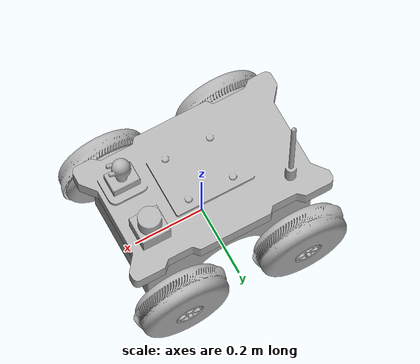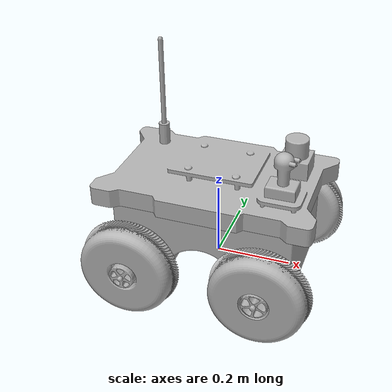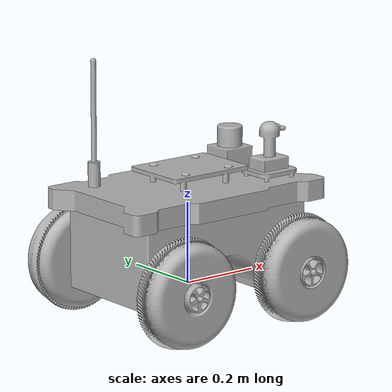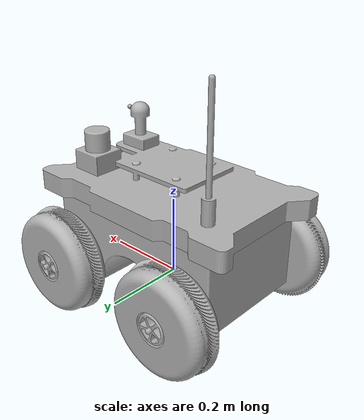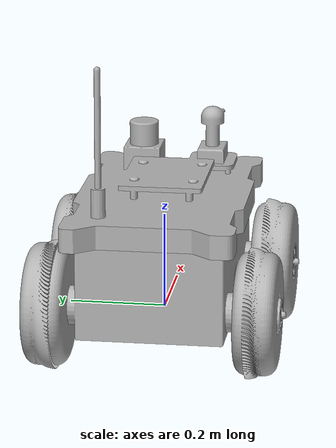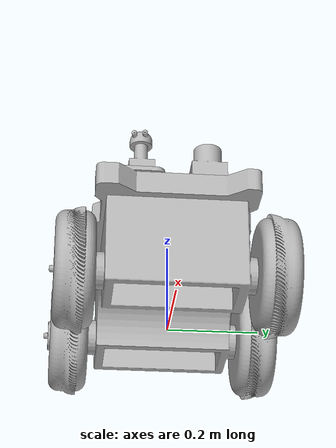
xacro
<?xml version="1.0" ?>
<robot name="Autonomous" xmlns:xacro="http://www.ros.org/wiki/xacro">

<xacro:include filename="$(find Autonomous_description)/urdf/materials.xacro" />
<xacro:include filename="$(find Autonomous_description)/urdf/Autonomous.trans" />
<xacro:include filename="$(find Autonomous_description)/urdf/Autonomous.gazebo" />
<link name="base_link">
<link name="base_footprint" />

<joint name="base_footprint_joint" type="fixed">
  <parent link="base_footprint" />
  <child link="base_link" />
</joint>
  <inertial>
    <origin rpy="0 0 0" xyz="0.00045547425860864745 0.00013334157263914496 0.12256683574833657"/>
    <mass value="161.811167542829"/>
    <inertia ixx="2.199011" ixy="-0.013482" ixz="0.005606" iyy="3.826048" iyz="-0.00094" izz="5.183959"/>
  </inertial>
  <visual>
    <origin rpy="0 0 0" xyz="0 0 0"/>
    <geometry>
      <mesh filename="package://Autonomous_description/meshes/base_link.stl" scale="0.001 0.001 0.001"/>
    </geometry>
    <material name="silver"/>
  </visual>
  <collision>
    <origin rpy="0 0 0" xyz="0 0 0"/>
    <geometry>
      <mesh filename="package://Autonomous_description/meshes/base_link.stl" scale="0.001 0.001 0.001"/>
    </geometry>
  </collision>
</link>

<link name="head_plate_1">
  <inertial>
    <origin rpy="0 0 0" xyz="0.0008857179936177908 -0.00020093464683702602 0.028916723028354296"/>
    <mass value="76.46434417799571"/>
    <inertia ixx="0.79036" ixy="0.025407" ixz="0.006932" iyy="1.841929" iyz="-0.004605" izz="2.551353"/>
  </inertial>
  <visual>
    <origin rpy="0 0 0" xyz="0.002 0.0 -0.2"/>
    <geometry>
      <mesh filename="package://Autonomous_description/meshes/head_plate_1.stl" scale="0.001 0.001 0.001"/>
    </geometry>
    <material name="silver"/>
  </visual>
  <collision>
    <origin rpy="0 0 0" xyz="0.002 0.0 -0.2"/>
    <geometry>
      <mesh filename="package://Autonomous_description/meshes/head_plate_1.stl" scale="0.001 0.001 0.001"/>
    </geometry>
  </collision>
</link>

<link name="leftwheel1_1">
  <inertial>
    <origin rpy="0 0 0" xyz="-8.462941458731166e-11 0.017600805928090324 -3.566898929691087e-07"/>
    <mass value="28.50616227536455"/>
    <inertia ixx="0.136487" ixy="-0.0" ixz="0.0" iyy="0.241289" iyz="-0.0" izz="0.136487"/>
  </inertial>
  <visual>
    <origin rpy="0 0 0" xyz="0.175 0.2315 -0.051428"/>
    <geometry>
      <mesh filename="package://Autonomous_description/meshes/leftwheel1_1.stl" scale="0.001 0.001 0.001"/>
    </geometry>
    <material name="silver"/>
  </visual>
  <collision>
    <origin rpy="0 0 0" xyz="0.175 0.2315 -0.051428"/>
    <geometry>
      <mesh filename="package://Autonomous_description/meshes/leftwheel1_1.stl" scale="0.001 0.001 0.001"/>
    </geometry>
  </collision>
</link>

<link name="leftwheel2_1">
  <inertial>
    <origin rpy="0 0 0" xyz="3.7442909883722564e-11 0.017667816011131182 -3.560382714137833e-07"/>
    <mass value="28.69673795938468"/>
    <inertia ixx="0.138023" ixy="0.0" ixz="-0.0" iyy="0.244287" iyz="0.0" izz="0.138023"/>
  </inertial>
  <visual>
    <origin rpy="0 0 0" xyz="-0.175 0.2315 -0.051428"/>
    <geometry>
      <mesh filename="package://Autonomous_description/meshes/leftwheel2_1.stl" scale="0.001 0.001 0.001"/>
    </geometry>
    <material name="silver"/>
  </visual>
  <collision>
    <origin rpy="0 0 0" xyz="-0.175 0.2315 -0.051428"/>
    <geometry>
      <mesh filename="package://Autonomous_description/meshes/leftwheel2_1.stl" scale="0.001 0.001 0.001"/>
    </geometry>
  </collision>
</link>

<link name="rightwheel1_1">
  <inertial>
    <origin rpy="0 0 0" xyz="1.7761209170075176e-11 -0.01769598448241705 5.0064323180165626e-08"/>
    <mass value="28.706203799863335"/>
    <inertia ixx="0.138087" ixy="0.0" ixz="-0.0" iyy="0.244397" iyz="0.0" izz="0.138087"/>
  </inertial>
  <visual>
    <origin rpy="0 0 0" xyz="0.175 -0.2315 -0.053213"/>
    <geometry>
      <mesh filename="package://Autonomous_description/meshes/rightwheel1_1.stl" scale="0.001 0.001 0.001"/>
    </geometry>
    <material name="silver"/>
  </visual>
  <collision>
    <origin rpy="0 0 0" xyz="0.175 -0.2315 -0.053213"/>
    <geometry>
      <mesh filename="package://Autonomous_description/meshes/rightwheel1_1.stl" scale="0.001 0.001 0.001"/>
    </geometry>
  </collision>
</link>

<link name="rightwheel2_1">
  <inertial>
    <origin rpy="0 0 0" xyz="-4.964404998197836e-10 -0.017657317794122274 5.293726080407568e-08"/>
    <mass value="28.688999718753134"/>
    <inertia ixx="0.137953" ixy="-0.0" ixz="0.0" iyy="0.244154" iyz="0.0" izz="0.137953"/>
  </inertial>
  <visual>
    <origin rpy="0 0 0" xyz="-0.175 -0.2315 -0.053213"/>
    <geometry>
      <mesh filename="package://Autonomous_description/meshes/rightwheel2_1.stl" scale="0.001 0.001 0.001"/>
    </geometry>
    <material name="silver"/>
  </visual>
  <collision>
    <origin rpy="0 0 0" xyz="-0.175 -0.2315 -0.053213"/>
    <geometry>
      <mesh filename="package://Autonomous_description/meshes/rightwheel2_1.stl" scale="0.001 0.001 0.001"/>
    </geometry>
  </collision>
</link>

<link name="lidar_1">
  <inertial>
    <origin rpy="0 0 0" xyz="-0.09799956899999965 0.20000049002590786 -0.008728002015254144"/>
    <mass value="3.595695297056587"/>
    <inertia ixx="0.004215" ixy="-0.0" ixz="0.0" iyy="0.004276" iyz="-0.0" izz="0.003052"/>
  </inertial>
  <visual>
    <origin rpy="0 0 0" xyz="-0.286443 0.129544 -0.3"/>
    <geometry>
      <mesh filename="package://Autonomous_description/meshes/lidar_1.stl" scale="0.001 0.001 0.001"/>
    </geometry>
    <material name="silver"/>
  </visual>
  <collision>
    <origin rpy="0 0 0" xyz="-0.286443 0.129544 -0.3"/>
    <geometry>
      <mesh filename="package://Autonomous_description/meshes/lidar_1.stl" scale="0.001 0.001 0.001"/>
    </geometry>
  </collision>
</link>

<link name="camera_1">
  <inertial>
    <origin rpy="0 0 0" xyz="0.0007088684452421501 -6.279580039501853e-05 0.04145103987922577"/>
    <mass value="1.7065577459889112"/>
    <inertia ixx="0.002495" ixy="2e-06" ixz="-5.7e-05" iyy="0.002734" iyz="6e-06" izz="0.000917"/>
  </inertial>
  <visual>
    <origin rpy="0 0 0" xyz="-0.189761 0.076346 -0.27"/>
    <geometry>
      <mesh filename="package://Autonomous_description/meshes/camera_1.stl" scale="0.001 0.001 0.001"/>
    </geometry>
    <material name="silver"/>
  </visual>
  <collision>
    <origin rpy="0 0 0" xyz="-0.189761 0.076346 -0.27"/>
    <geometry>
      <mesh filename="package://Autonomous_description/meshes/camera_1.stl" scale="0.001 0.001 0.001"/>
    </geometry>
  </collision>
</link>

<joint name="Rigid1" type="fixed">
  <origin rpy="0 0 0" xyz="-0.002 0.0 0.2"/>
  <parent link="base_link"/>
  <child link="head_plate_1"/>
</joint>

<joint name="Rev2" type="continuous">
  <origin rpy="0 0 0" xyz="-0.175 -0.2315 0.051428"/>
  <parent link="base_link"/>
  <child link="leftwheel1_1"/>
  <axis xyz="0.0 1.0 0.0"/>
</joint>

<joint name="Rev3" type="continuous">
  <origin rpy="0 0 0" xyz="0.175 -0.2315 0.051428"/>
  <parent link="base_link"/>
  <child link="leftwheel2_1"/>
  <axis xyz="0.0 1.0 0.0"/>
</joint>

<joint name="Rev4" type="continuous">
  <origin rpy="0 0 0" xyz="-0.175 0.2315 0.053213"/>
  <parent link="base_link"/>
  <child link="rightwheel1_1"/>
  <axis xyz="-0.0 1.0 0.0"/>
</joint>

<joint name="Rev5" type="continuous">
  <origin rpy="0 0 0" xyz="0.175 0.2315 0.053213"/>
  <parent link="base_link"/>
  <child link="rightwheel2_1"/>
  <axis xyz="-0.0 1.0 0.0"/>
</joint>

<joint name="Rigid6" type="fixed">
  <origin rpy="0 0 0" xyz="0.288443 -0.129544 0.1"/>
  <parent link="head_plate_1"/>
  <child link="lidar_1"/>
</joint>

<joint name="Rigid7" type="fixed">
  <origin rpy="0 0 0" xyz="0.191761 -0.076346 0.07"/>
  <parent link="head_plate_1"/>
  <child link="camera_1"/>
</joint>

</robot>

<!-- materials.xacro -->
<robot name="Autonomous" xmlns:xacro="http://www.ros.org/wiki/xacro" >

<material name="silver">
  <color rgba="0.700 0.700 0.700 1.000"/>
</material>

</robot>

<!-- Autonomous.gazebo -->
<robot name="Autonomous" xmlns:xacro="http://www.ros.org/wiki/xacro" >

<xacro:property name="body_color" value="Gazebo/Silver" />

<gazebo>
  <plugin filename="libgazebo_ros_control.so" name="control"/>
</gazebo>
<gazebo reference="base_link">
  <material>${body_color}</material>
  <mu1>0.1</mu1>
  <mu2>0.1</mu2>
  <selfCollide>true</selfCollide>
  <gravity>true</gravity>
</gazebo>

<gazebo reference="head_plate_1">
  <material>${body_color}</material>
  <mu1>0.2</mu1>
  <mu2>0.2</mu2>
  <selfCollide>true</selfCollide>
</gazebo>

<gazebo reference="leftwheel1_1">
  <material>${body_color}</material>
  <mu1>1500</mu1>
  <mu2>1500</mu2>
  <selfCollide>true</selfCollide>
</gazebo>

<gazebo reference="leftwheel2_1">
  <material>${body_color}</material>
  <mu1>1500</mu1>
  <mu2>1500</mu2>
  <selfCollide>true</selfCollide>
</gazebo>

<gazebo reference="rightwheel1_1">
  <material>${body_color}</material>
  <mu1>1500</mu1>
  <mu2>1500</mu2>
  <selfCollide>true</selfCollide>
</gazebo>

<gazebo reference="rightwheel2_1">
  <material>${body_color}</material>
  <mu1>1500</mu1>
  <mu2>1500</mu2>
  <selfCollide>true</selfCollide>
</gazebo>

<gazebo reference="lidar_1">
  <material>${body_color}</material>
  <mu1>0.2</mu1>
  <mu2>0.2</mu2>
  <selfCollide>true</selfCollide>
</gazebo>

<gazebo reference="camera_1">
  <material>${body_color}</material>
  <mu1>0.2</mu1>
  <mu2>0.2</mu2>
  <selfCollide>true</selfCollide>
</gazebo>

<!-- hokuyo -->
  <gazebo reference="lidar_1">
    <sensor type="ray" name="head_hokuyo_sensor">
      <pose>0 0 0 0 0 0</pose>
      <visualize>true</visualize>
      <update_rate>40</update_rate>
      <ray>
        <scan>
          <horizontal>
            <samples>720</samples>
            <resolution>1</resolution>
            <min_angle>-1.570796</min_angle>
            <max_angle>1.570796</max_angle>
          </horizontal>
        </scan>
        <range>
          <min>0.10</min>
          <max>30.0</max>
          <resolution>0.01</resolution>
        </range>
        <noise>
          <type>gaussian</type>
          <mean>0.0</mean>
          <stddev>0.01</stddev>
        </noise>
      </ray>
      <plugin name="gazebo_ros_head_hokuyo_controller" filename="libgazebo_ros_laser.so">
        <topicName>/scan</topicName>
        <frameName>lidar_1</frameName>
      </plugin>
    </sensor>
  </gazebo>

<!-- Four whelled differential drive plugin -->
<gazebo>
  <plugin name="skid_steer_drive_controller" filename="libgazebo_ros_skid_steer_drive.so">
    <updateRate>100.0</updateRate>
    <robotNamespace>/</robotNamespace>
    <leftFrontJoint>Rev2</leftFrontJoint>
    <rightFrontJoint>Rev4</rightFrontJoint>
    <leftRearJoint>Rev3</leftRearJoint>
    <rightRearJoint>Rev5</rightRearJoint>
    <wheelSeparation>0.4</wheelSeparation>
    <wheelDiameter>0.2</wheelDiameter>
    <robotBaseFrame>base_link</robotBaseFrame>
    <torque>20</torque>
    <topicName>cmd_vel</topicName>
    <broadcastTF>false</broadcastTF>
  </plugin>
</gazebo>

</robot>
